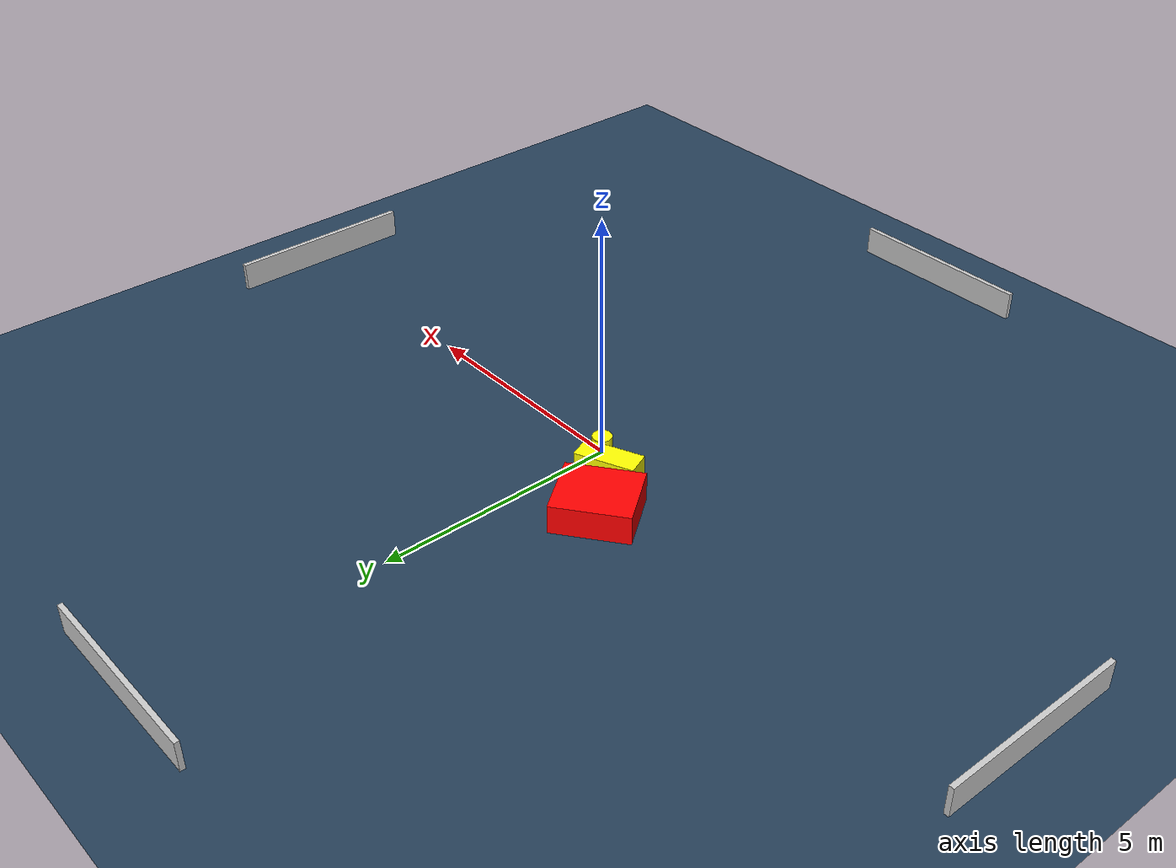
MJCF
<?xml version="1.0" ?>
<mujoco model="generated_environment">
  <option timestep="0.01" integrator="RK4" cone="elliptic"/>
  <default>
    <geom density="1"/>
  </default>
  <asset>
    <texture builtin="gradient" height="3072" name="skybox" rgb1="0.3 0.5 0.7" rgb2="0 0 0" type="skybox" width="512"/>
    <texture builtin="checker" height="300" name="groundplane" rgb1="0.2 0.3 0.4" rgb2="0.1 0.2 0.3" type="2d" width="300"/>
    <material name="groundplane" reflectance="0.2" texrepeat="5 5" texture="groundplane"/>
  </asset>
  <worldbody>
    <light dir="0 0 -1" directional="true" pos="0 0 1.5"/>
    <geom condim="3" friction="0.5 0.005 0.001" material="groundplane" name="floor" pos="0 0 0" size="0 0 0.05" type="plane"/>
    <body name="walls">
      <geom name="wall_1" condim="4" pos="-10.0 0.0 0.3" rgba="0.800000011920929 0.800000011920929 0.800000011920929 1.0" size="0.05 2.0 0.3" type="box"/>
      <geom name="wall_2" condim="4" pos="10.0 0.0 0.3" rgba="0.800000011920929 0.800000011920929 0.800000011920929 1.0" size="0.05 2.0 0.3" type="box"/>
      <geom name="wall_3" condim="4" pos="0.0 -10.0 0.3" rgba="0.800000011920929 0.800000011920929 0.800000011920929 1.0" size="2.0 0.05 0.3" type="box"/>
      <geom name="wall_4" condim="4" pos="0.0 10.0 0.3" rgba="0.800000011920929 0.800000011920929 0.800000011920929 1.0" size="2.0 0.05 0.3" type="box"/>
    </body>
    <body name="robot">
      <joint name="joint_x" type="slide" pos="0 0 0" axis="1 0 0"/>
      <joint name="joint_y" type="slide" pos="0 0 0" axis="0 1 0"/>
      <geom name="robot" type="cylinder" pos="0.0 0.0 0.2" size="0.2 0.2 0.0" mass="5.0" friction="1.0 0.005 0.0001" condim="4" rgba="1.0 1.0 0.0 1.0"/>
    </body>
    <body name="obstacle_1_movable">
      <geom name="obstacle_1_movable" condim="4" pos="-0.7499221245763611 0.47043405214418416 0.3" euler="0 0 112.7802588629563" friction="0.0 0.005 0.001" rgba="1.0 1.0 0.0 1.0" size="0.2540977884501565 0.6146956906887997 0.3" type="box" mass="0.1"/>
      <joint type="free"/>
    </body>
    <body name="obstacle_2_static">
      <geom name="obstacle_2_static" condim="4" pos="-1.4167310575712977 1.326852689642906 0.3" euler="0 0 126.76798697807521" friction="0.0 0.005 0.001" rgba="1.0 0.0 0.0 1.0" size="0.6756403254318546 0.7752552890253748 0.3" type="box"/>
    </body>
  </worldbody>
  <actuator>
    <motor name="actuator_x" joint="joint_x" gear="1" ctrlrange="-1 1"/>
    <motor name="actuator_y" joint="joint_y" gear="1" ctrlrange="-1 1"/>
  </actuator>
</mujoco>
